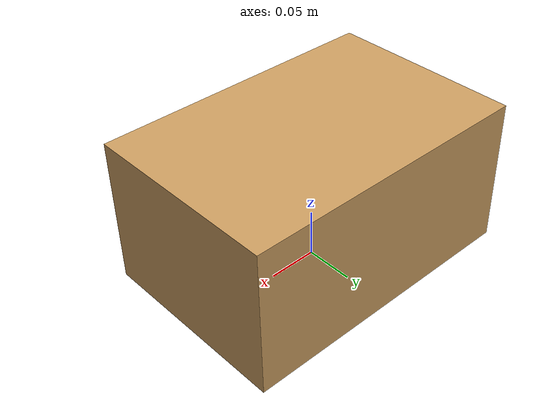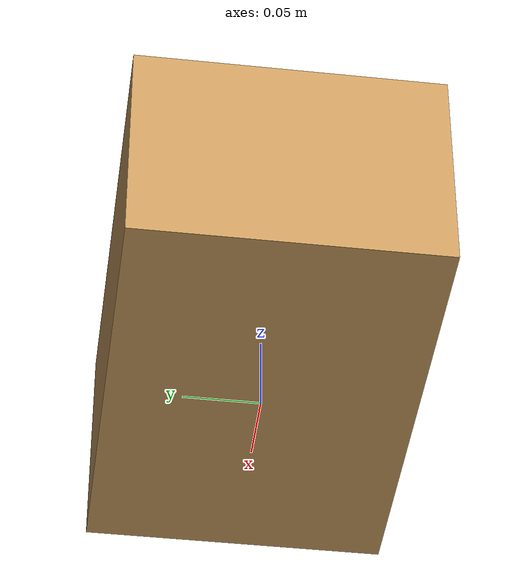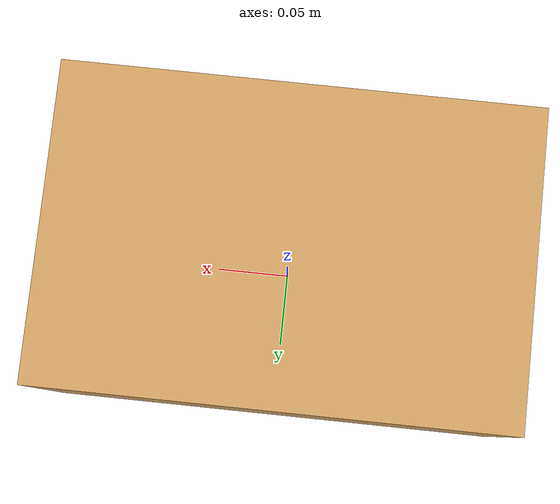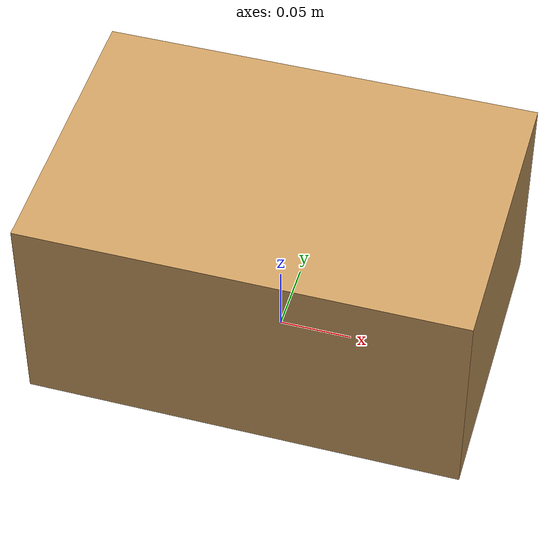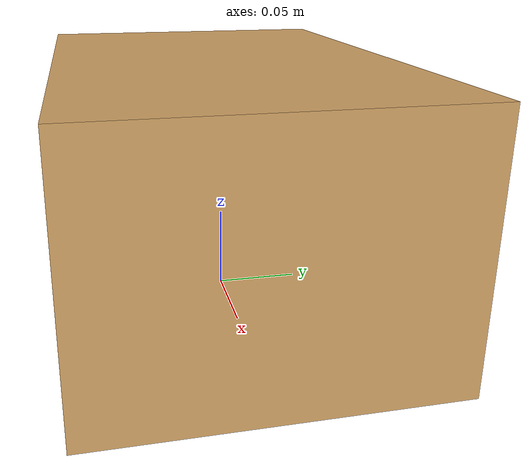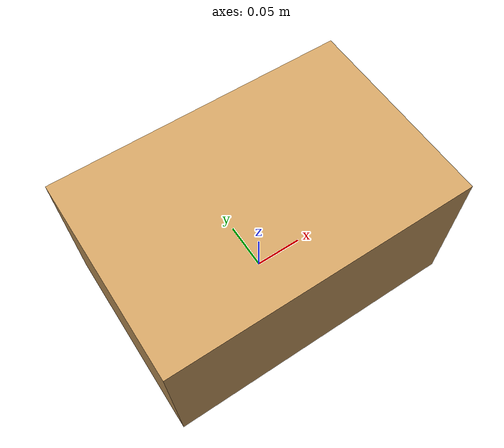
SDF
<?xml version="1.0" ?>
<sdf version="1.8">
  <model name="box_small">
    <link name="link">
      <pose>0 0 0.075 0 0 0</pose>
      <inertial>
        <mass>2.0</mass>
        <inertia><ixx>0.010417</ixx><iyy>0.018750</iyy><izz>0.021667</izz><ixy>0</ixy><ixz>0</ixz><iyz>0</iyz></inertia>
      </inertial>
      <collision name="collision">
        <geometry><box><size>0.30 0.20 0.15</size></box></geometry>
        <surface><friction><ode><mu>0.6</mu><mu2>0.6</mu2></ode></friction></surface>
      </collision>
      <visual name="visual">
        <geometry><box><size>0.30 0.20 0.15</size></box></geometry>
        <material>
          <ambient>0.80 0.62 0.38 1</ambient>
          <diffuse>0.80 0.62 0.38 1</diffuse>
        </material>
      </visual>
    </link>
  </model>
</sdf>
